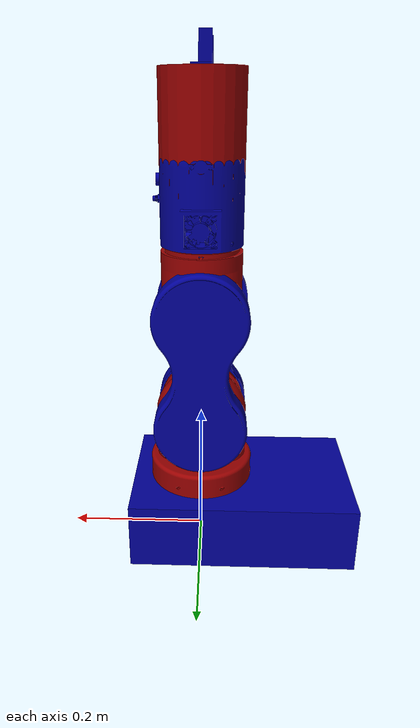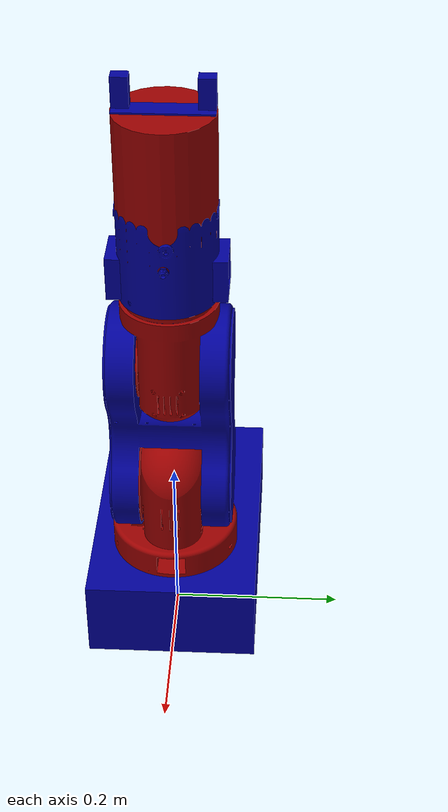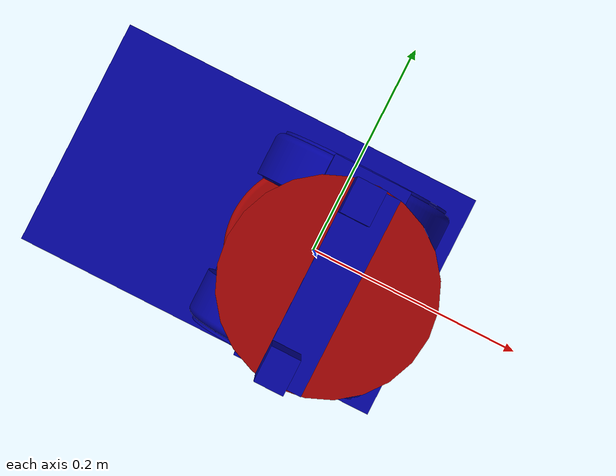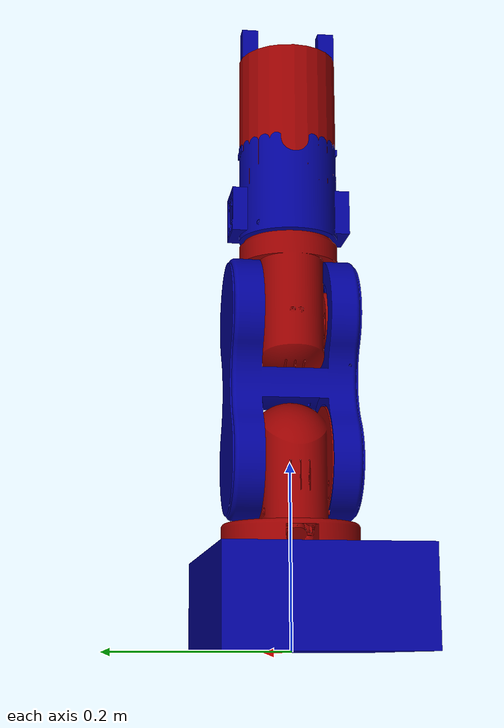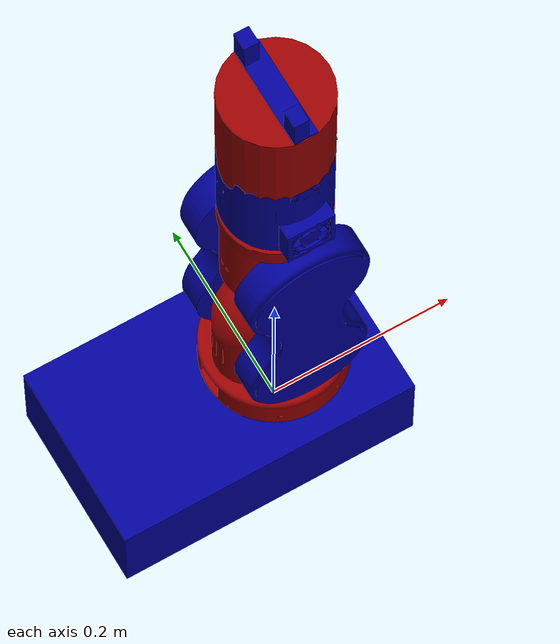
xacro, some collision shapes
<?xml version="1.0"?>
<robot name="my_robot" xmlns:xacro="http://www.ros.org/wiki/xacro">

    <xacro:include filename="common_properties.xacro" />
    <xacro:include filename="robot_base.xacro" />
    <xacro:include filename="gripper.xacro" />
    <xacro:include filename="my_robot.ros2_control.xacro" />

    <joint name="gripper_base_joint" type="fixed">
        <parent link="ee_link" />
        <child link="gripper_base" />
        <origin xyz="0 0 0" rpy="0 0 1.57" />
    </joint>

</robot>

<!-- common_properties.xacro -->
<robot xmlns:xacro="http://www.ros.org/wiki/xacro">

    <material name="blue">
        <color rgba="0 0 0.6 1" />
    </material>

    <material name="red">
        <color rgba="0.6 0 0 1" />
    </material>

    <material name="black">
        <color rgba="0 0 0 1" />
    </material>

    <xacro:macro name="cylinder_inertia" params="m r l o_xyz o_rpy">
        <inertial>
            <mass value="${m}" />
            <origin xyz="${o_xyz}" rpy="${o_rpy}" />
            <inertia ixx="${(1.0/12.0)*m*(3*r**2 + l**2)}" ixy="0" ixz="0"
                     iyy="${(1.0/12.0)*m*(3*r**2 + l**2)}" iyz="0"
                     izz="${(1.0/2.0)*m*r**2}" />
        </inertial>
    </xacro:macro>

    <xacro:macro name="box_inertia" params="m x y z o_xyz o_rpy">
        <inertial>
            <mass value="${m}" />
            <origin xyz="${o_xyz}" rpy="${o_rpy}" />
            <inertia ixx="${(1.0/12.0)*m*(y**2 + z**2)}" ixy="0" ixz="0"
                     iyy="${(1.0/12.0)*m*(x**2 + z**2)}" iyz="0"
                     izz="${(1.0/12.0)*m*(x**2 + y**2)}" />
        </inertial>
    </xacro:macro>

</robot>

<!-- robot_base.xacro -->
<robot name="my_robot" xmlns:xacro="http://www.ros.org/wiki/xacro">

    <!-- CAD meshes are exported from FreeCAD in millimetres; URDF works in metres. -->
    <xacro:property name="mm_to_m" value="0.001" />

    <xacro:property name="base_length" value="0.5" />
    <xacro:property name="base_width" value="0.5" />
    <xacro:property name="link_1_length" value="0.3" />
    <xacro:property name="link_1_radius" value="0.1" />
    <xacro:property name="link_2_length" value="0.5" />
    <xacro:property name="link_2_radius" value="0.1" />
    <xacro:property name="base_height" value="0.2" />
    <xacro:property name="link_3_length" value="0.2" />
    <xacro:property name="link_3_radius" value="0.1" />
    <xacro:property name="link_4_length" value="0.3" />
    <xacro:property name="link_4_radius" value="0.12" />
    <xacro:property name="wrist_2_link_length" value="0.08" />
    <xacro:property name="wrist_2_link_width" value="0.06" />
    <xacro:property name="wrist_2_link_height" value="0.04" />
    <xacro:property name="finger_length" value="0.06" />
    <xacro:property name="finger_width" value="0.01" />
    <xacro:property name="finger_height" value="0.02" />
    <xacro:property name="finger_gap" value="0.025" />
    <xacro:property name="finger_travel" value="0.02" />
    <xacro:property name="tool_link_length" value="0.08" />
    <xacro:property name="tool_link_radius" value="0.05" />

    <link name="base_link">
        <visual>
            <geometry>
                <mesh filename="package://robot_description/meshes/assemblybase.stl" scale="${mm_to_m} ${mm_to_m} ${mm_to_m}" />
            </geometry>
            <origin xyz="0 0 0" rpy="0 0 0" />
            <material name="blue" />
        </visual>
        <collision>
            <geometry>
                <box size="0.3236 0.2000 0.0980"/>
            </geometry>
            <origin xyz="-0.0618 0.0000 0.0490" rpy="0 0 0" />
        </collision>
    </link>

    <link name="link_1">
        <visual>
            <geometry>
                <mesh filename="package://robot_description/meshes/assemblyart1.stl" scale="${mm_to_m} ${mm_to_m} ${mm_to_m}" />
            </geometry>
            <origin xyz="0 0 0" rpy="0 0 0" />
            <material name="red" />
        </visual>
        <collision>
            <geometry>
                <cylinder length="0.1500" radius="0.0770" />
            </geometry>
            <origin xyz="0 0 0.0450" rpy="0 0 0" />
        </collision>
    </link>

    <link name="link_2">
        <visual>
            <geometry>
                <mesh filename="package://robot_description/meshes/assemblyart2.stl" scale="${mm_to_m} ${mm_to_m} ${mm_to_m}" />
            </geometry>
            <origin xyz="0 0 0" rpy="1.5708 0 3.1416" />
            <material name="blue" />
        </visual>
        <collision>
            <geometry>
                <mesh filename="package://robot_description/meshes/assemblyart2.stl" scale="${mm_to_m} ${mm_to_m} ${mm_to_m}" />
            </geometry>
            <origin xyz="0 0 0" rpy="1.5708 0 3.1416" />
        </collision>
    </link>

    <link name="link_3">
        <visual>
            <geometry>
                <mesh filename="package://robot_description/meshes/assemblyart3.stl" scale="${mm_to_m} ${mm_to_m} ${mm_to_m}" />
            </geometry>
            <origin xyz="0 0 0.0815" rpy="0 3.1416 0" />
            <material name="red" />
        </visual>
        <collision>
            <geometry>
                <cylinder length="0.1490" radius="0.0680" />
            </geometry>
            <origin xyz="0 0 0.0035" rpy="0 0 0" />
        </collision>
    </link>

    <link name="link_4">
        <visual>
            <geometry>
                <mesh filename="package://robot_description/meshes/assemblyart4.stl" scale="${mm_to_m} ${mm_to_m} ${mm_to_m}" />
            </geometry>
            <origin xyz="0 0 0" rpy="0 0 0" />
            <material name="blue" />
        </visual>
        <collision>
            <geometry>
                <mesh filename="package://robot_description/meshes/assemblyart4.stl" scale="${mm_to_m} ${mm_to_m} ${mm_to_m}" />
            </geometry>
            <origin xyz="0 0 0" rpy="0 0 0" />
        </collision>
    </link>

    <link name="wrist_2_link">
        <visual>
            <geometry>
                <mesh filename="package://robot_description/meshes/assemblyart5_6.stl" scale="${mm_to_m} ${mm_to_m} ${mm_to_m}" />
            </geometry>
            <origin xyz="0 0 0" rpy="0 0 1.5708" />
            <material name="red" />
        </visual>
        <collision>
            <geometry>
                <cylinder length="0.1585" radius="0.0550" />
            </geometry>
            <origin xyz="0 0 0.0323" rpy="0 0 0" />
        </collision>
    </link>

    <link name="wrist_link" />

    <link name="ee_link" />

    <joint name="base_yaw_joint" type="revolute">
        <parent link="base_link" />
        <child link="link_1" />
        <origin xyz="0 0 0.079" rpy="0 0 0" />
        <axis xyz="0 0 1" />
        <limit lower="-3.1416" upper="3.1416" effort="20" velocity="1.5"/>
    </joint>

    <joint name="shoulder_roll_joint" type="revolute">
        <parent link="link_1" />
        <child link="link_2" />
        <origin xyz="0 -0.068 0.123" rpy="0 0 0" />
        <axis xyz="0 1 0" />
        <limit lower="-1.7200" upper="1.7200" effort="20" velocity="1.5"/>
    </joint>

    <joint name="elbow_roll_joint" type="revolute">
        <parent link="link_2" />
        <child link="link_3" />
        <origin xyz="0 0.068 0.16" rpy="0 0 0" />
        <axis xyz="0 1 0" />
        <limit lower="-1.7200" upper="1.7200" effort="20" velocity="1.5"/>
    </joint>

    <joint name="wrist_yaw_joint" type="revolute">
        <parent link="link_3" />
        <child link="link_4" />
        <origin xyz="0 0 0.0825" rpy="0 0 0" />
        <axis xyz="0 0 1" />
        <limit lower="-3.1416" upper="3.1416" effort="15" velocity="1.5"/>
    </joint>

    <joint name="wrist_roll_joint" type="revolute">
        <parent link="link_4" />
        <child link="wrist_link" />
        <origin xyz="0 0 0.1115" rpy="0 0 0" />
        <axis xyz="0 1 0" />
        <limit lower="-1.410" upper="1.410" effort="8" velocity="2.0"/>
    </joint>

    <joint name="tool_yaw_joint" type="revolute">
        <parent link="wrist_link" />
        <child link="wrist_2_link" />
        <origin xyz="0 0 0" rpy="0 0 0" />
        <axis xyz="0 0 1" />
        <limit lower="-3.1416" upper="3.1416" effort="8" velocity="2.0"/>
    </joint>

    <joint name="ee_fixed_joint" type="fixed">
        <parent link="wrist_2_link" />
        <child link="ee_link" />
        <origin xyz="0 0 0.1115" rpy="0 0 0" />
    </joint>

    <link name="tool_link" />

    <joint name="tool_fixed_joint" type="fixed">
        <parent link="ee_link" />
        <child link="tool_link" />
        <origin xyz="0 0 0" rpy="0 0 0" />
    </joint>

</robot>

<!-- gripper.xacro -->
<robot xmlns:xacro="http://www.ros.org/wiki/xacro">

    <link name="gripper_base">
        <visual>
            <geometry>
                <box size="0.107 0.02482 0.002" />
            </geometry>
            <origin xyz="0 0 0.001" rpy="0 0 0" />
            <material name="blue" />
        </visual>
        <collision>
            <geometry>
                <box size="0.107 0.02482 0.002" />
            </geometry>
            <origin xyz="0 0 0.001" rpy="0 0 0" />
        </collision>
    </link>

    <link name="gripper_finger_left">
        <visual>
            <geometry>
                <box size="0.01861 0.01550 0.03571" />
            </geometry>
            <origin xyz="-0.04419 0.00466 0.01785" rpy="0 0 0" />
            <material name="blue" />
        </visual>
        <collision>
            <geometry>
                <box size="0.01861 0.01550 0.03571" />
            </geometry>
            <origin xyz="-0.04419 0.00466 0.01785" rpy="0 0 0" />
        </collision>
    </link>

    <link name="gripper_finger_right">
        <visual>
            <geometry>
                <box size="0.01861 0.01550 0.03571" />
            </geometry>
            <origin xyz="0.04419 0.00466 0.01785" rpy="0 0 0" />
            <material name="blue" />
        </visual>
        <collision>
            <geometry>
                <box size="0.01861 0.01550 0.03571" />
            </geometry>
            <origin xyz="0.04419 0.00466 0.01785" rpy="0 0 0" />
        </collision>
    </link>

    <joint name="gripper_finger_left_joint" type="prismatic">
        <parent link="gripper_base" />
        <child link="gripper_finger_left" />
        <origin xyz="0 0 0" rpy="0 0 0" />
        <axis xyz="1 0 0" />
        <limit lower="0" upper="0.034" effort="20" velocity="0.1" />
    </joint>

    <joint name="gripper_finger_right_joint" type="prismatic">
        <parent link="gripper_base" />
        <child link="gripper_finger_right" />
        <origin xyz="0 0 0" rpy="0 0 0" />
        <axis xyz="1 0 0" />
        <mimic joint="gripper_finger_left_joint" multiplier="-1.0"/>
        <limit lower="-0.034" upper="0" effort="20" velocity="0.1" />
    </joint>

</robot>
